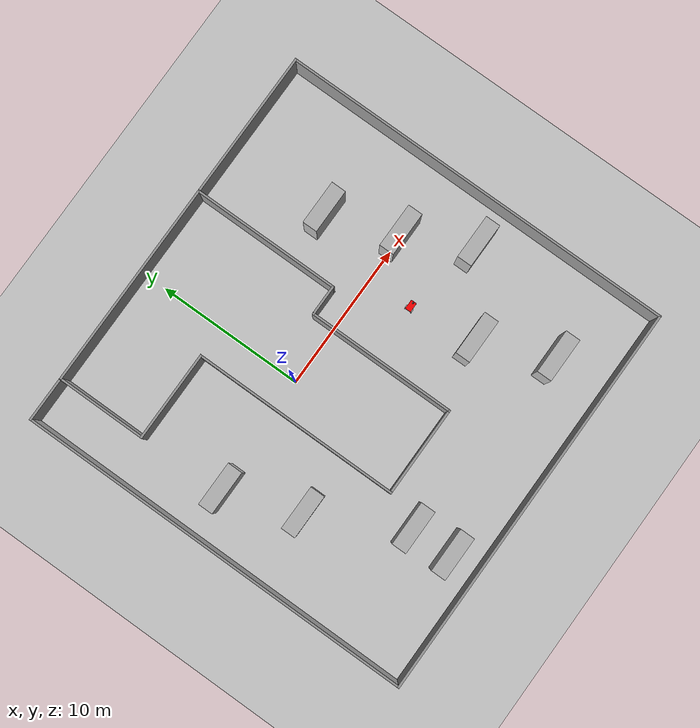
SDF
<sdf version="1.4">
 <world name="default">
  <model name="ground_plane">
   <static>1</static>
   <link name="link">
    <collision name="collision">
     <geometry><plane><normal>0 0 1</normal><size>100 100</size></plane></geometry>
     <surface><friction><ode><mu>100</mu><mu2>50</mu2></ode></friction></surface>
    </collision>
    <visual name="visual">
     <cast_shadows>0</cast_shadows>
     <geometry><plane><normal>0 0 1</normal><size>100 100</size></plane></geometry>
     <material>
      <script><uri>file://media/materials/scripts/gazebo.material</uri><name>Gazebo/Grey</name></script>
     </material>
    </visual>
    <velocity_decay><linear>0</linear><angular>0</angular></velocity_decay>
   </link>
  </model>
  <scene><ambient>0.4 0.4 0.4 1</ambient><background>0.7 0.7 0.7 1</background><shadows>0</shadows></scene>
  <light name="sun" type="directional">
   <pose>0 0 10 0 -0 0</pose>
   <diffuse>0.8 0.8 0.8 1</diffuse>
   <specular>0.2 0.2 0.2 1</specular>
   <attenuation>
    <range>1000</range>
    <constant>0.9</constant>
    <linear>0.01</linear>
    <quadratic>0.001</quadratic>
   </attenuation>
   <direction>-0.5 0.1 -0.9</direction>
  </light>
  <gravity>0 0 -9.8</gravity>
  <magnetic_field>6e-06 2.3e-05 -4.2e-05</magnetic_field>
  <atmosphere type="adiabatic"/>
  <physics name="default_physics" default="0" type="ode">
   <max_step_size>0.001</max_step_size>
   <real_time_factor>1</real_time_factor>
   <real_time_update_rate>1000</real_time_update_rate>
  </physics>
  <scene><ambient>0.4 0.4 0.4 1</ambient><background>0.7 0.7 0.7 1</background><shadows>1</shadows></scene>
  <audio><device>default</device></audio>
  <spherical_coordinates>
   <surface_model>EARTH_WGS84</surface_model>
   <latitude_deg>47.840640</latitude_deg>
   <longitude_deg>10.619944</longitude_deg>
   <elevation>740.0</elevation>
   <heading_deg>180</heading_deg>
  </spherical_coordinates>
  <include><pose>8.0 -3.0 0.0 0.0 0.0 0.0</pose><uri>model://basic_mobile_bot_description</uri></include>
  <include><uri>model://kmou</uri><pose>2.4 -2.1 0 0 0 0</pose></include>
 </world>
</sdf>

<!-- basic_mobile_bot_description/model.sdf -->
<sdf version="1.5">
  <model name="basic_mobile_bot">
  <static>false</static>

  <!-- ****************** ROBOT BASE FOOTPRINT ***************************  -->
  <pose>0.0 0.0 0.0 0.0 0.0 0.0</pose>
  <link name="base_footprint"/>

  <!-- ********************** ROBOT BASE *********************************  -->
  <link name="base_link">

    <collision name="base_collision">
      <pose>0 0 0.1 0 0 0</pose>
      <geometry>
        <box>
          <size>0.70 0.39 0.20</size>
        </box>
      </geometry>
    </collision>

    <visual name="base_visual">
      <pose>0 0 -0.05 1.5707963267949 0 3.141592654</pose>
      <geometry>
        <mesh>
          <uri>model://basic_mobile_bot_description/meshes/robot_base.stl</uri>
          <scale>1.0 1.0 1.0</scale>
        </mesh>
      </geometry>
      <material>
        <ambient>1.0 0.0 0.0 1.0</ambient>
        <diffuse>1.0 0.0 0.0 1.0</diffuse>
        <specular>0.0 0.0 0.0 1.0</specular>
        <emissive>0.0 0.0 0.0 1.0</emissive>
      </material>
    </visual>
  </link>

  <!-- *********************** IMU SENSOR SETUP **************************  -->
  <link name="imu_link">
    <gravity>true</gravity>
    <sensor name="bmb_imu" type="imu">
      <always_on>true</always_on>
      <update_rate>100</update_rate>
      <visualize>true</visualize>
      <imu>
        <orientation>
          <x>
            <noise type="gaussian">
              <mean>0.0</mean>
              <stddev>2e-3</stddev>
            </noise>
          </x>
          <y>
            <noise type="gaussian">
              <mean>0.0</mean>
              <stddev>2e-3</stddev>
            </noise>
          </y>
          <z>
            <noise type="gaussian">
              <mean>0.0</mean>
              <stddev>2e-3</stddev>
            </noise>
          </z>
        </orientation>
        <angular_velocity>
          <x>
            <noise type="gaussian">
              <mean>0.0</mean>
              <stddev>2e-4</stddev>
            </noise>
          </x>
          <y>
            <noise type="gaussian">
              <mean>0.0</mean>
              <stddev>2e-4</stddev>
            </noise>
          </y>
          <z>
            <noise type="gaussian">
              <mean>0.0</mean>
              <stddev>2e-4</stddev>
            </noise>
          </z>
        </angular_velocity>
        <linear_acceleration>
          <x>
            <noise type="gaussian">
              <mean>0.0</mean>
              <stddev>1.7e-2</stddev>
            </noise>
          </x>
          <y>
            <noise type="gaussian">
              <mean>0.0</mean>
              <stddev>1.7e-2</stddev>
            </noise>
          </y>
          <z>
            <noise type="gaussian">
              <mean>0.0</mean>
              <stddev>1.7e-2</stddev>
            </noise>
          </z>
        </linear_acceleration>
      </imu>
      <plugin name="basic_mobile_bot_imu" filename="libgazebo_ros_imu_sensor.so">
        <initial_orientation_as_reference>false</initial_orientation_as_reference>
        <frame_name>imu_link</frame_name>
        <ros>
          <namespace>/imu</namespace>
          <remapping>~/out:=data</remapping>
        </ros>
      </plugin>
    </sensor>
  </link>

  <!-- *********************** GPS SETUP *********************************  -->
  <link name="gps_link">
    <sensor name="bmb_gps" type="gps">
      <always_on>true</always_on>
      <update_rate>10.0</update_rate>
      <gps>
        <position_sensing>
          <horizontal>
            <noise type="gaussian">
              <mean>0.0</mean>
              <stddev>1e-2</stddev>
            </noise>
          </horizontal>
          <vertical>
            <noise type="gaussian">
              <mean>0.0</mean>
              <stddev>1</stddev>
            </noise>
          </vertical>
        </position_sensing>
      </gps>
      <plugin name="basic_mobile_bot_gps" filename="libgazebo_ros_gps_sensor.so">
        <ros>
          <remapping>~/out:=gps/fix</remapping>
        </ros>
      </plugin>
    </sensor>
  </link>

  <!-- ****************************** LIDAR *****************************    -->
  <link name="lidar_link">
    <inertial>
      <pose>0.215 0 0.13 0 0 0</pose>
      <inertia>
        <ixx>0.001</ixx>
        <ixy>0.000</ixy>
        <ixz>0.000</ixz>
        <iyy>0.001</iyy>
        <iyz>0.000</iyz>
        <izz>0.001</izz>
      </inertia>
      <mass>0.114</mass>
    </inertial>

    <collision name="lidar_collision">
      <pose>0.215 0 0.13 0 0 0</pose>
      <geometry>
        <cylinder>
          <radius>0.0508</radius>
          <length>0.18</length>
        </cylinder>
      </geometry>
    </collision>

    <visual name="lidar_visual">
      <pose>0.215 0 0.13 0 0 0</pose>
      <geometry>
        <cylinder>
          <radius>0.0508</radius>
          <length>0.18</length>
        </cylinder>
      </geometry>
      <material>
        <ambient>0.0 0.0 0.0 1.0</ambient>
        <diffuse>0.0 0.0 0.0 1.0</diffuse>
        <specular>0.0 0.0 0.0 1.0</specular>
        <emissive>0.0 0.0 0.0 1.0</emissive>
      </material>
    </visual>

    <sensor name="lidar" type="ray">
      <pose>0.215 0 0.215 0 0 0</pose>
      <always_on>true</always_on>
      <visualize>true</visualize>
      <update_rate>5</update_rate>
      <ray>
        <scan>
          <horizontal>
            <samples>360</samples>
            <resolution>1.00000</resolution>
            <min_angle>0.000000</min_angle>
            <max_angle>6.280000</max_angle>
          </horizontal>
        </scan>
        <range>
          <min>0.120000</min>
          <max>3.5</max>
          <resolution>0.015000</resolution>
        </range>
        <noise>
          <type>gaussian</type>
          <mean>0.0</mean>
          <stddev>0.01</stddev>
        </noise>
      </ray>
      <plugin name="scan" filename="libgazebo_ros_ray_sensor.so">
        <ros>
          <remapping>~/out:=scan</remapping>
        </ros>
        <output_type>sensor_msgs/LaserScan</output_type>
        <frame_name>lidar_link</frame_name>
      </plugin>
    </sensor>
  </link>

  <!-- *********************** DRIVE WHEELS ******************************  -->
  <link name="drivewhl_l_link">
    <pose>-0.221 0.23 -0.05 0 1.570796 1.570796</pose>

    <collision name="drivewhl_l_collision">
      <geometry>
        <cylinder>
          <radius>0.14</radius>
          <length>0.06</length>
        </cylinder>
      </geometry>
    </collision>

    <visual name="drivewhl_l_visual">
      <geometry>
        <cylinder>
          <radius>0.14</radius>
          <length>0.06</length>
        </cylinder>
      </geometry>
    </visual>
  </link>

  <link name="drivewhl_r_link">
    <pose>-0.221 -0.23 -0.05 0 1.570796 1.570796</pose>

    <collision name="drivewhl_r_collision">
      <geometry>
        <cylinder>
          <radius>0.14</radius>
          <length>0.06</length>
        </cylinder>
      </geometry>
    </collision>

    <visual name="drivewhl_r_visual">
      <geometry>
        <cylinder>
          <radius>0.14</radius>
          <length>0.06</length>
        </cylinder>
      </geometry>
    </visual>
  </link>

  <!-- *********************** CASTER WHEEL ******************************  -->
  <link name='front_caster'>
    <pose>0.217 0 -0.1 0 0 0</pose>
    <inertial>
      <inertia>
        <ixx>0.001</ixx>
        <ixy>0.000</ixy>
        <ixz>0.000</ixz>
        <iyy>0.001</iyy>
        <iyz>0.000</iyz>
        <izz>0.001</izz>
      </inertia>
      <mass>70.0</mass>
    </inertial>
    <collision name='collision'>
      <geometry>
        <sphere>
          <radius>0.09</radius>
        </sphere>
      </geometry>
      <surface>
        <friction>
          <ode>
            <mu>0.01</mu>
            <mu2>0.01</mu2>
            <slip1>1.0</slip1>
            <slip2>1.0</slip2>
          </ode>
        </friction>
      </surface>
    </collision>
    <visual name="front_caster_visual">
      <geometry>
        <sphere>
          <radius>0.09</radius>
        </sphere>
      </geometry>
    </visual>
  </link>

  <!-- ************************ JOINTS ***********************************  -->
  <!-- Pose of the joint is the same as the child link frame -->
  <!-- Axis is the axis of rotation relative to the child link frame -->

  <joint name="base_joint" type="fixed">
    <parent>base_footprint</parent>
    <child>base_link</child>
    <pose>0 0 0 0 0 0</pose>
  </joint>

  <joint name="drivewhl_l_joint" type="revolute">
    <parent>base_link</parent>
    <child>drivewhl_l_link</child>
    <pose>0 0 0 0 0 0</pose>
    <axis>
      <xyz>0 0 1</xyz>
    </axis>
  </joint>

  <joint name="drivewhl_r_joint" type="revolute">
    <parent>base_link</parent>
    <child>drivewhl_r_link</child>
    <pose>0 0 0 0 0 0</pose>
    <axis>
      <xyz>0 0 1</xyz>
    </axis>
  </joint>

  <joint name='caster_joint' type='fixed'>
    <parent>base_link</parent>
    <child>front_caster</child>
    <pose>0 0 0 0 0 0</pose>
  </joint>

  <joint name="imu_joint" type="fixed">
    <parent>base_link</parent>
    <child>imu_link</child>
    <pose>0 0 0 0 0 0</pose>
  </joint>

  <joint name="gps_joint" type="fixed">
    <parent>base_link</parent>
    <child>gps_link</child>
    <pose>0 0 0 0 0 0</pose>
  </joint>

  <joint name="lidar_joint" type="fixed">
    <parent>base_link</parent>
    <child>lidar_link</child>
    <pose>0 0 0 0 0 0</pose>
  </joint>

 <!-- *********************** WHEEL ODOMETRY ***************************    -->
  <plugin name="basic_mobile_bot_diff_drive" filename="libgazebo_ros_diff_drive.so">

    <update_rate>30</update_rate>

    <!-- wheels -->
    <left_joint>drivewhl_l_joint</left_joint>
    <right_joint>drivewhl_r_joint</right_joint>

    <!-- kinematics -->
    <wheel_separation>0.52</wheel_separation>
    <wheel_diameter>0.28</wheel_diameter>

    <!-- limits -->
    <max_wheel_torque>20</max_wheel_torque>
    <max_wheel_acceleration>1.0</max_wheel_acceleration>

    <!-- Receive velocity commands on this ROS topic -->
    <command_topic>cmd_vel</command_topic>

    <!-- output -->
    <!-- When false, publish no wheel odometry data to a ROS topic -->
    <publish_odom>true</publish_odom>

    <!-- When true, publish coordinate transform from odom to base_footprint -->
    <!-- I usually use the robot_localization package to publish this transform -->
    <publish_odom_tf>false</publish_odom_tf>

    <!-- When true, publish coordinate transform from base_link to the wheels -->
    <!-- The robot_state_publisher package is often used to publish this transform -->
    <publish_wheel_tf>false</publish_wheel_tf>

    <odometry_topic>odom</odometry_topic>
    <odometry_frame>odom</odometry_frame>
    <robot_base_frame>base_footprint</robot_base_frame>

    <!-- Odometry source, 0 for ENCODER, 1 for WORLD, defaults to WORLD -->
    <odometry_source>0</odometry_source>

    <!-- Change the ROS topic we will publish the odometry data to -->
    <ros>
      <remapping>odom:=wheel/odometry</remapping>
    </ros>

  </plugin>

 <!-- *********************** JOINT STATE PUBLISHER *********************   -->

  <plugin name="basic_mobile_bot_joint_state" filename="libgazebo_ros_joint_state_publisher.so">
    <ros>
      <remapping>~/out:=joint_states</remapping>
    </ros>
    <update_rate>30</update_rate>
    <joint_name>drivewhl_l_joint</joint_name>
    <joint_name>drivewhl_r_joint</joint_name>
  </plugin>

  </model>
</sdf>

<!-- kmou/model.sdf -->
<sdf version='1.7'>
  <model name='kmou_'>
    <link name='Wall_38'>
      <pose>0 13.5 0 0 -0 0</pose>
      <self_collide>0</self_collide>
      <enable_wind>0</enable_wind>
      <kinematic>0</kinematic>
      <visual name='Wall_38_Visual'>
        <pose>0 0 1.25 0 -0 0</pose>
        <geometry>
          <box>
            <size>27.15 0.15 2.5</size>
          </box>
        </geometry>
        <material>
          <script>
            <uri>file://media/materials/scripts/gazebo.material</uri>
            <name>Gazebo/Grey</name>
          </script>
          <ambient>1 1 1 1</ambient>
          <shader type='pixel'/>
        </material>
        <meta>
          <layer>0</layer>
        </meta>
        <transparency>0</transparency>
        <cast_shadows>1</cast_shadows>
      </visual>
      <collision name='Wall_38_Collision'>
        <laser_retro>0</laser_retro>
        <max_contacts>10</max_contacts>
        <pose>0 0 1.25 0 -0 0</pose>
        <geometry>
          <box>
            <size>27.15 0.15 2.5</size>
          </box>
        </geometry>
        <surface>
          <friction>
            <ode>
              <mu>1</mu>
              <mu2>1</mu2>
              <fdir1>0 0 0</fdir1>
              <slip1>0</slip1>
              <slip2>0</slip2>
            </ode>
            <torsional>
              <coefficient>1</coefficient>
              <patch_radius>0</patch_radius>
              <surface_radius>0</surface_radius>
              <use_patch_radius>1</use_patch_radius>
              <ode>
                <slip>0</slip>
              </ode>
            </torsional>
          </friction>
          <bounce>
            <restitution_coefficient>0</restitution_coefficient>
            <threshold>1e+06</threshold>
          </bounce>
          <contact>
            <collide_without_contact>0</collide_without_contact>
            <collide_without_contact_bitmask>1</collide_without_contact_bitmask>
            <collide_bitmask>1</collide_bitmask>
            <ode>
              <soft_cfm>0</soft_cfm>
              <soft_erp>0.2</soft_erp>
              <kp>1e+13</kp>
              <kd>1</kd>
              <max_vel>0.01</max_vel>
              <min_depth>0</min_depth>
            </ode>
            <bullet>
              <split_impulse>1</split_impulse>
              <split_impulse_penetration_threshold>-0.01</split_impulse_penetration_threshold>
              <soft_cfm>0</soft_cfm>
              <soft_erp>0.2</soft_erp>
              <kp>1e+13</kp>
              <kd>1</kd>
            </bullet>
          </contact>
        </surface>
      </collision>
    </link>
    <link name='Wall_40'>
      <pose>-10.5 10.5 0 0 0 -1.5708</pose>
      <self_collide>0</self_collide>
      <enable_wind>0</enable_wind>
      <kinematic>0</kinematic>
      <visual name='Wall_40_Visual'>
        <pose>0 0 1.25 0 -0 0</pose>
        <geometry>
          <box>
            <size>6.15 0.15 2.5</size>
          </box>
        </geometry>
        <material>
          <script>
            <uri>file://media/materials/scripts/gazebo.material</uri>
            <name>Gazebo/Grey</name>
          </script>
          <ambient>1 1 1 1</ambient>
          <shader type='pixel'/>
        </material>
        <meta>
          <layer>0</layer>
        </meta>
        <transparency>0</transparency>
        <cast_shadows>1</cast_shadows>
      </visual>
      <collision name='Wall_40_Collision'>
        <laser_retro>0</laser_retro>
        <max_contacts>10</max_contacts>
        <pose>0 0 1.25 0 -0 0</pose>
        <geometry>
          <box>
            <size>6.15 0.15 2.5</size>
          </box>
        </geometry>
        <surface>
          <friction>
            <ode>
              <mu>1</mu>
              <mu2>1</mu2>
              <fdir1>0 0 0</fdir1>
              <slip1>0</slip1>
              <slip2>0</slip2>
            </ode>
            <torsional>
              <coefficient>1</coefficient>
              <patch_radius>0</patch_radius>
              <surface_radius>0</surface_radius>
              <use_patch_radius>1</use_patch_radius>
              <ode>
                <slip>0</slip>
              </ode>
            </torsional>
          </friction>
          <bounce>
            <restitution_coefficient>0</restitution_coefficient>
            <threshold>1e+06</threshold>
          </bounce>
          <contact>
            <collide_without_contact>0</collide_without_contact>
            <collide_without_contact_bitmask>1</collide_without_contact_bitmask>
            <collide_bitmask>1</collide_bitmask>
            <ode>
              <soft_cfm>0</soft_cfm>
              <soft_erp>0.2</soft_erp>
              <kp>1e+13</kp>
              <kd>1</kd>
              <max_vel>0.01</max_vel>
              <min_depth>0</min_depth>
            </ode>
            <bullet>
              <split_impulse>1</split_impulse>
              <split_impulse_penetration_threshold>-0.01</split_impulse_penetration_threshold>
              <soft_cfm>0</soft_cfm>
              <soft_erp>0.2</soft_erp>
              <kp>1e+13</kp>
              <kd>1</kd>
            </bullet>
          </contact>
        </surface>
      </collision>
    </link>
    <link name='Wall_42'>
      <pose>-4.5 0.5 0 0 0 -1.5708</pose>
      <self_collide>0</self_collide>
      <enable_wind>0</enable_wind>
      <kinematic>0</kinematic>
      <visual name='Wall_42_Visual'>
        <pose>0 0 1.25 0 -0 0</pose>
        <geometry>
          <box>
            <size>14.15 0.15 2.5</size>
          </box>
        </geometry>
        <material>
          <script>
            <uri>file://media/materials/scripts/gazebo.material</uri>
            <name>Gazebo/Grey</name>
          </script>
          <ambient>1 1 1 1</ambient>
          <shader type='pixel'/>
        </material>
        <meta>
          <layer>0</layer>
        </meta>
        <transparency>0</transparency>
        <cast_shadows>1</cast_shadows>
      </visual>
      <collision name='Wall_42_Collision'>
        <laser_retro>0</laser_retro>
        <max_contacts>10</max_contacts>
        <pose>0 0 1.25 0 -0 0</pose>
        <geometry>
          <box>
            <size>14.15 0.15 2.5</size>
          </box>
        </geometry>
        <surface>
          <friction>
            <ode>
              <mu>1</mu>
              <mu2>1</mu2>
              <fdir1>0 0 0</fdir1>
              <slip1>0</slip1>
              <slip2>0</slip2>
            </ode>
            <torsional>
              <coefficient>1</coefficient>
              <patch_radius>0</patch_radius>
              <surface_radius>0</surface_radius>
              <use_patch_radius>1</use_patch_radius>
              <ode>
                <slip>0</slip>
              </ode>
            </torsional>
          </friction>
          <bounce>
            <restitution_coefficient>0</restitution_coefficient>
            <threshold>1e+06</threshold>
          </bounce>
          <contact>
            <collide_without_contact>0</collide_without_contact>
            <collide_without_contact_bitmask>1</collide_without_contact_bitmask>
            <collide_bitmask>1</collide_bitmask>
            <ode>
              <soft_cfm>0</soft_cfm>
              <soft_erp>0.2</soft_erp>
              <kp>1e+13</kp>
              <kd>1</kd>
              <max_vel>0.01</max_vel>
              <min_depth>0</min_depth>
            </ode>
            <bullet>
              <split_impulse>1</split_impulse>
              <split_impulse_penetration_threshold>-0.01</split_impulse_penetration_threshold>
              <soft_cfm>0</soft_cfm>
              <soft_erp>0.2</soft_erp>
              <kp>1e+13</kp>
              <kd>1</kd>
            </bullet>
          </contact>
        </surface>
      </collision>
    </link>
    <link name='Wall_44'>
      <pose>-7.5 7.5 0 0 -0 0</pose>
      <self_collide>0</self_collide>
      <enable_wind>0</enable_wind>
      <kinematic>0</kinematic>
      <visual name='Wall_44_Visual'>
        <pose>0 0 1.25 0 -0 0</pose>
        <geometry>
          <box>
            <size>6.15 0.15 2.5</size>
          </box>
        </geometry>
        <material>
          <script>
            <uri>file://media/materials/scripts/gazebo.material</uri>
            <name>Gazebo/Grey</name>
          </script>
          <ambient>1 1 1 1</ambient>
          <shader type='pixel'/>
        </material>
        <meta>
          <layer>0</layer>
        </meta>
        <transparency>0</transparency>
        <cast_shadows>1</cast_shadows>
      </visual>
      <collision name='Wall_44_Collision'>
        <laser_retro>0</laser_retro>
        <max_contacts>10</max_contacts>
        <pose>0 0 1.25 0 -0 0</pose>
        <geometry>
          <box>
            <size>6.15 0.15 2.5</size>
          </box>
        </geometry>
        <surface>
          <friction>
            <ode>
              <mu>1</mu>
              <mu2>1</mu2>
              <fdir1>0 0 0</fdir1>
              <slip1>0</slip1>
              <slip2>0</slip2>
            </ode>
            <torsional>
              <coefficient>1</coefficient>
              <patch_radius>0</patch_radius>
              <surface_radius>0</surface_radius>
              <use_patch_radius>1</use_patch_radius>
              <ode>
                <slip>0</slip>
              </ode>
            </torsional>
          </friction>
          <bounce>
            <restitution_coefficient>0</restitution_coefficient>
            <threshold>1e+06</threshold>
          </bounce>
          <contact>
            <collide_without_contact>0</collide_without_contact>
            <collide_without_contact_bitmask>1</collide_without_contact_bitmask>
            <collide_bitmask>1</collide_bitmask>
            <ode>
              <soft_cfm>0</soft_cfm>
              <soft_erp>0.2</soft_erp>
              <kp>1e+13</kp>
              <kd>1</kd>
              <max_vel>0.01</max_vel>
              <min_depth>0</min_depth>
            </ode>
            <bullet>
              <split_impulse>1</split_impulse>
              <split_impulse_penetration_threshold>-0.01</split_impulse_penetration_threshold>
              <soft_cfm>0</soft_cfm>
              <soft_erp>0.2</soft_erp>
              <kp>1e+13</kp>
              <kd>1</kd>
            </bullet>
          </contact>
        </surface>
      </collision>
    </link>
    <link name='Wall_46'>
      <pose>-1.5 -6.5 0 0 -0 0</pose>
      <self_collide>0</self_collide>
      <enable_wind>0</enable_wind>
      <kinematic>0</kinematic>
      <visual name='Wall_46_Visual'>
        <pose>0 0 1.25 0 -0 0</pose>
        <geometry>
          <box>
            <size>6.15 0.15 2.5</size>
          </box>
        </geometry>
        <material>
          <script>
            <uri>file://media/materials/scripts/gazebo.material</uri>
            <name>Gazebo/Grey</name>
          </script>
          <ambient>1 1 1 1</ambient>
          <shader type='pixel'/>
        </material>
        <meta>
          <layer>0</layer>
        </meta>
        <transparency>0</transparency>
        <cast_shadows>1</cast_shadows>
      </visual>
      <collision name='Wall_46_Collision'>
        <laser_retro>0</laser_retro>
        <max_contacts>10</max_contacts>
        <pose>0 0 1.25 0 -0 0</pose>
        <geometry>
          <box>
            <size>6.15 0.15 2.5</size>
          </box>
        </geometry>
        <surface>
          <friction>
            <ode>
              <mu>1</mu>
              <mu2>1</mu2>
              <fdir1>0 0 0</fdir1>
              <slip1>0</slip1>
              <slip2>0</slip2>
            </ode>
            <torsional>
              <coefficient>1</coefficient>
              <patch_radius>0</patch_radius>
              <surface_radius>0</surface_radius>
              <use_patch_radius>1</use_patch_radius>
              <ode>
                <slip>0</slip>
              </ode>
            </torsional>
          </friction>
          <bounce>
            <restitution_coefficient>0</restitution_coefficient>
            <threshold>1e+06</threshold>
          </bounce>
          <contact>
            <collide_without_contact>0</collide_without_contact>
            <collide_without_contact_bitmask>1</collide_without_contact_bitmask>
            <collide_bitmask>1</collide_bitmask>
            <ode>
              <soft_cfm>0</soft_cfm>
              <soft_erp>0.2</soft_erp>
              <kp>1e+13</kp>
              <kd>1</kd>
              <max_vel>0.01</max_vel>
              <min_depth>0</min_depth>
            </ode>
            <bullet>
              <split_impulse>1</split_impulse>
              <split_impulse_penetration_threshold>-0.01</split_impulse_penetration_threshold>
              <soft_cfm>0</soft_cfm>
              <soft_erp>0.2</soft_erp>
              <kp>1e+13</kp>
              <kd>1</kd>
            </bullet>
          </contact>
        </surface>
      </collision>
    </link>
    <link name='Wall_48'>
      <pose>1.5 -1.5 0 0 -0 1.5708</pose>
      <self_collide>0</self_collide>
      <enable_wind>0</enable_wind>
      <kinematic>0</kinematic>
      <visual name='Wall_48_Visual'>
        <pose>0 0 1.25 0 -0 0</pose>
        <geometry>
          <box>
            <size>10.15 0.15 2.5</size>
          </box>
        </geometry>
        <material>
          <script>
            <uri>file://media/materials/scripts/gazebo.material</uri>
            <name>Gazebo/Grey</name>
          </script>
          <ambient>1 1 1 1</ambient>
          <shader type='pixel'/>
        </material>
        <meta>
          <layer>0</layer>
        </meta>
        <transparency>0</transparency>
        <cast_shadows>1</cast_shadows>
      </visual>
      <collision name='Wall_48_Collision'>
        <laser_retro>0</laser_retro>
        <max_contacts>10</max_contacts>
        <pose>0 0 1.25 0 -0 0</pose>
        <geometry>
          <box>
            <size>10.15 0.15 2.5</size>
          </box>
        </geometry>
        <surface>
          <friction>
            <ode>
              <mu>1</mu>
              <mu2>1</mu2>
              <fdir1>0 0 0</fdir1>
              <slip1>0</slip1>
              <slip2>0</slip2>
            </ode>
            <torsional>
              <coefficient>1</coefficient>
              <patch_radius>0</patch_radius>
              <surface_radius>0</surface_radius>
              <use_patch_radius>1</use_patch_radius>
              <ode>
                <slip>0</slip>
              </ode>
            </torsional>
          </friction>
          <bounce>
            <restitution_coefficient>0</restitution_coefficient>
            <threshold>1e+06</threshold>
          </bounce>
          <contact>
            <collide_without_contact>0</collide_without_contact>
            <collide_without_contact_bitmask>1</collide_without_contact_bitmask>
            <collide_bitmask>1</collide_bitmask>
            <ode>
              <soft_cfm>0</soft_cfm>
              <soft_erp>0.2</soft_erp>
              <kp>1e+13</kp>
              <kd>1</kd>
              <max_vel>0.01</max_vel>
              <min_depth>0</min_depth>
            </ode>
            <bullet>
              <split_impulse>1</split_impulse>
              <split_impulse_penetration_threshold>-0.01</split_impulse_penetration_threshold>
              <soft_cfm>0</soft_cfm>
              <soft_erp>0.2</soft_erp>
              <kp>1e+13</kp>
              <kd>1</kd>
            </bullet>
          </contact>
        </surface>
      </collision>
    </link>
    <link name='Wall_54'>
      <pose>2.5 3.5 0 0 -0 0</pose>
      <self_collide>0</self_collide>
      <enable_wind>0</enable_wind>
      <kinematic>0</kinematic>
      <visual name='Wall_54_Visual'>
        <pose>0 0 1.25 0 -0 0</pose>
        <geometry>
          <box>
            <size>2.15 0.15 2.5</size>
          </box>
        </geometry>
        <material>
          <script>
            <uri>file://media/materials/scripts/gazebo.material</uri>
            <name>Gazebo/Grey</name>
          </script>
          <ambient>1 1 1 1</ambient>
          <shader type='pixel'/>
        </material>
        <meta>
          <layer>0</layer>
        </meta>
        <transparency>0</transparency>
        <cast_shadows>1</cast_shadows>
      </visual>
      <collision name='Wall_54_Collision'>
        <laser_retro>0</laser_retro>
        <max_contacts>10</max_contacts>
        <pose>0 0 1.25 0 -0 0</pose>
        <geometry>
          <box>
            <size>2.15 0.15 2.5</size>
          </box>
        </geometry>
        <surface>
          <friction>
            <ode>
              <mu>1</mu>
              <mu2>1</mu2>
              <fdir1>0 0 0</fdir1>
              <slip1>0</slip1>
              <slip2>0</slip2>
            </ode>
            <torsional>
              <coefficient>1</coefficient>
              <patch_radius>0</patch_radius>
              <surface_radius>0</surface_radius>
              <use_patch_radius>1</use_patch_radius>
              <ode>
                <slip>0</slip>
              </ode>
            </torsional>
          </friction>
          <bounce>
            <restitution_coefficient>0</restitution_coefficient>
            <threshold>1e+06</threshold>
          </bounce>
          <contact>
            <collide_without_contact>0</collide_without_contact>
            <collide_without_contact_bitmask>1</collide_without_contact_bitmask>
            <collide_bitmask>1</collide_bitmask>
            <ode>
              <soft_cfm>0</soft_cfm>
              <soft_erp>0.2</soft_erp>
              <kp>1e+13</kp>
              <kd>1</kd>
              <max_vel>0.01</max_vel>
              <min_depth>0</min_depth>
            </ode>
            <bullet>
              <split_impulse>1</split_impulse>
              <split_impulse_penetration_threshold>-0.01</split_impulse_penetration_threshold>
              <soft_cfm>0</soft_cfm>
              <soft_erp>0.2</soft_erp>
              <kp>1e+13</kp>
              <kd>1</kd>
            </bullet>
          </contact>
        </surface>
      </collision>
    </link>
    <link name='Wall_56'>
      <pose>3.5 8.5 0 0 -0 1.5708</pose>
      <self_collide>0</self_collide>
      <enable_wind>0</enable_wind>
      <kinematic>0</kinematic>
      <visual name='Wall_56_Visual'>
        <pose>0 0 1.25 0 -0 0</pose>
        <geometry>
          <box>
            <size>10.15 0.15 2.5</size>
          </box>
        </geometry>
        <material>
          <script>
            <uri>file://media/materials/scripts/gazebo.material</uri>
            <name>Gazebo/Grey</name>
          </script>
          <ambient>1 1 1 1</ambient>
          <shader type='pixel'/>
        </material>
        <meta>
          <layer>0</layer>
        </meta>
        <transparency>0</transparency>
        <cast_shadows>1</cast_shadows>
      </visual>
      <collision name='Wall_56_Collision'>
        <laser_retro>0</laser_retro>
        <max_contacts>10</max_contacts>
        <pose>0 0 1.25 0 -0 0</pose>
        <geometry>
          <box>
            <size>10.15 0.15 2.5</size>
          </box>
        </geometry>
        <surface>
          <friction>
            <ode>
              <mu>1</mu>
              <mu2>1</mu2>
              <fdir1>0 0 0</fdir1>
              <slip1>0</slip1>
              <slip2>0</slip2>
            </ode>
            <torsional>
              <coefficient>1</coefficient>
              <patch_radius>0</patch_radius>
              <surface_radius>0</surface_radius>
              <use_patch_radius>1</use_patch_radius>
              <ode>
                <slip>0</slip>
              </ode>
            </torsional>
          </friction>
          <bounce>
            <restitution_coefficient>0</restitution_coefficient>
            <threshold>1e+06</threshold>
          </bounce>
          <contact>
            <collide_without_contact>0</collide_without_contact>
            <collide_without_contact_bitmask>1</collide_without_contact_bitmask>
            <collide_bitmask>1</collide_bitmask>
            <ode>
              <soft_cfm>0</soft_cfm>
              <soft_erp>0.2</soft_erp>
              <kp>1e+13</kp>
              <kd>1</kd>
              <max_vel>0.01</max_vel>
              <min_depth>0</min_depth>
            </ode>
            <bullet>
              <split_impulse>1</split_impulse>
              <split_impulse_penetration_threshold>-0.01</split_impulse_penetration_threshold>
              <soft_cfm>0</soft_cfm>
              <soft_erp>0.2</soft_erp>
              <kp>1e+13</kp>
              <kd>1</kd>
            </bullet>
          </contact>
        </surface>
      </collision>
    </link>
    <link name='Wall_58'>
      <pose>-13.5 0 0 0 0 -1.5708</pose>
      <self_collide>0</self_collide>
      <enable_wind>0</enable_wind>
      <kinematic>0</kinematic>
      <visual name='Wall_58_Visual'>
        <pose>0 0 1.25 0 -0 0</pose>
        <geometry>
          <box>
            <size>27.15 0.15 2.5</size>
          </box>
        </geometry>
        <material>
          <script>
            <uri>file://media/materials/scripts/gazebo.material</uri>
            <name>Gazebo/Grey</name>
          </script>
          <ambient>1 1 1 1</ambient>
          <shader type='pixel'/>
        </material>
        <meta>
          <layer>0</layer>
        </meta>
        <transparency>0</transparency>
        <cast_shadows>1</cast_shadows>
      </visual>
      <collision name='Wall_58_Collision'>
        <laser_retro>0</laser_retro>
        <max_contacts>10</max_contacts>
        <pose>0 0 1.25 0 -0 0</pose>
        <geometry>
          <box>
            <size>27.15 0.15 2.5</size>
          </box>
        </geometry>
        <surface>
          <friction>
            <ode>
              <mu>1</mu>
              <mu2>1</mu2>
              <fdir1>0 0 0</fdir1>
              <slip1>0</slip1>
              <slip2>0</slip2>
            </ode>
            <torsional>
              <coefficient>1</coefficient>
              <patch_radius>0</patch_radius>
              <surface_radius>0</surface_radius>
              <use_patch_radius>1</use_patch_radius>
              <ode>
                <slip>0</slip>
              </ode>
            </torsional>
          </friction>
          <bounce>
            <restitution_coefficient>0</restitution_coefficient>
            <threshold>1e+06</threshold>
          </bounce>
          <contact>
            <collide_without_contact>0</collide_without_contact>
            <collide_without_contact_bitmask>1</collide_without_contact_bitmask>
            <collide_bitmask>1</collide_bitmask>
            <ode>
              <soft_cfm>0</soft_cfm>
              <soft_erp>0.2</soft_erp>
              <kp>1e+13</kp>
              <kd>1</kd>
              <max_vel>0.01</max_vel>
              <min_depth>0</min_depth>
            </ode>
            <bullet>
              <split_impulse>1</split_impulse>
              <split_impulse_penetration_threshold>-0.01</split_impulse_penetration_threshold>
              <soft_cfm>0</soft_cfm>
              <soft_erp>0.2</soft_erp>
              <kp>1e+13</kp>
              <kd>1</kd>
            </bullet>
          </contact>
        </surface>
      </collision>
    </link>
    <link name='Wall_60'>
      <pose>0 -13.5 0 0 -0 0</pose>
      <self_collide>0</self_collide>
      <enable_wind>0</enable_wind>
      <kinematic>0</kinematic>
      <visual name='Wall_60_Visual'>
        <pose>0 0 1.25 0 -0 0</pose>
        <geometry>
          <box>
            <size>27.15 0.15 2.5</size>
          </box>
        </geometry>
        <material>
          <script>
            <uri>file://media/materials/scripts/gazebo.material</uri>
            <name>Gazebo/Grey</name>
          </script>
          <ambient>1 1 1 1</ambient>
          <shader type='pixel'/>
        </material>
        <meta>
          <layer>0</layer>
        </meta>
        <transparency>0</transparency>
        <cast_shadows>1</cast_shadows>
      </visual>
      <collision name='Wall_60_Collision'>
        <laser_retro>0</laser_retro>
        <max_contacts>10</max_contacts>
        <pose>0 0 1.25 0 -0 0</pose>
        <geometry>
          <box>
            <size>27.15 0.15 2.5</size>
          </box>
        </geometry>
        <surface>
          <friction>
            <ode>
              <mu>1</mu>
              <mu2>1</mu2>
              <fdir1>0 0 0</fdir1>
              <slip1>0</slip1>
              <slip2>0</slip2>
            </ode>
            <torsional>
              <coefficient>1</coefficient>
              <patch_radius>0</patch_radius>
              <surface_radius>0</surface_radius>
              <use_patch_radius>1</use_patch_radius>
              <ode>
                <slip>0</slip>
              </ode>
            </torsional>
          </friction>
          <bounce>
            <restitution_coefficient>0</restitution_coefficient>
            <threshold>1e+06</threshold>
          </bounce>
          <contact>
            <collide_without_contact>0</collide_without_contact>
            <collide_without_contact_bitmask>1</collide_without_contact_bitmask>
            <collide_bitmask>1</collide_bitmask>
            <ode>
              <soft_cfm>0</soft_cfm>
              <soft_erp>0.2</soft_erp>
              <kp>1e+13</kp>
              <kd>1</kd>
              <max_vel>0.01</max_vel>
              <min_depth>0</min_depth>
            </ode>
            <bullet>
              <split_impulse>1</split_impulse>
              <split_impulse_penetration_threshold>-0.01</split_impulse_penetration_threshold>
              <soft_cfm>0</soft_cfm>
              <soft_erp>0.2</soft_erp>
              <kp>1e+13</kp>
              <kd>1</kd>
            </bullet>
          </contact>
        </surface>
      </collision>
    </link>
    <link name='Wall_62'>
      <pose>13.5 0 0 0 -0 1.5708</pose>
      <self_collide>0</self_collide>
      <enable_wind>0</enable_wind>
      <kinematic>0</kinematic>
      <visual name='Wall_62_Visual'>
        <pose>0 0 1.25 0 -0 0</pose>
        <geometry>
          <box>
            <size>27.15 0.15 2.5</size>
          </box>
        </geometry>
        <material>
          <script>
            <uri>file://media/materials/scripts/gazebo.material</uri>
            <name>Gazebo/Grey</name>
          </script>
          <ambient>1 1 1 1</ambient>
          <shader type='pixel'/>
        </material>
        <meta>
          <layer>0</layer>
        </meta>
        <transparency>0</transparency>
        <cast_shadows>1</cast_shadows>
      </visual>
      <collision name='Wall_62_Collision'>
        <laser_retro>0</laser_retro>
        <max_contacts>10</max_contacts>
        <pose>0 0 1.25 0 -0 0</pose>
        <geometry>
          <box>
            <size>27.15 0.15 2.5</size>
          </box>
        </geometry>
        <surface>
          <friction>
            <ode>
              <mu>1</mu>
              <mu2>1</mu2>
              <fdir1>0 0 0</fdir1>
              <slip1>0</slip1>
              <slip2>0</slip2>
            </ode>
            <torsional>
              <coefficient>1</coefficient>
              <patch_radius>0</patch_radius>
              <surface_radius>0</surface_radius>
              <use_patch_radius>1</use_patch_radius>
              <ode>
                <slip>0</slip>
              </ode>
            </torsional>
          </friction>
          <bounce>
            <restitution_coefficient>0</restitution_coefficient>
            <threshold>1e+06</threshold>
          </bounce>
          <contact>
            <collide_without_contact>0</collide_without_contact>
            <collide_without_contact_bitmask>1</collide_without_contact_bitmask>
            <collide_bitmask>1</collide_bitmask>
            <ode>
              <soft_cfm>0</soft_cfm>
              <soft_erp>0.2</soft_erp>
              <kp>1e+13</kp>
              <kd>1</kd>
              <max_vel>0.01</max_vel>
              <min_depth>0</min_depth>
            </ode>
            <bullet>
              <split_impulse>1</split_impulse>
              <split_impulse_penetration_threshold>-0.01</split_impulse_penetration_threshold>
              <soft_cfm>0</soft_cfm>
              <soft_erp>0.2</soft_erp>
              <kp>1e+13</kp>
              <kd>1</kd>
            </bullet>
          </contact>
        </surface>
      </collision>
    </link>
    <model name='kmou'>
      <model name='brick_box_3x1x3'>
        <static>1</static>
        <link name='chassis'>
          <pose>0 0 1.5 0 -0 0</pose>
          <collision name='collision'>
            <geometry>
              <box>
                <size>3 1 3</size>
              </box>
            </geometry>
          </collision>
          <visual name='visual'>
            <geometry>
              <mesh>
                <uri>model://brick_box_3x1x3/meshes/simple_box.dae</uri>
                <scale>3 1 3</scale>
              </mesh>
            </geometry>
            <material>
              <script>
                <uri>model://brick_box_3x1x3/materials/scripts</uri>
                <uri>model://brick_box_3x1x3/materials/textures</uri>
                <name>BrickBox/Diffuse</name>
              </script>
            </material>
          </visual>
        </link>
        <pose>-11.4133 5.16529 0 0 -0 0</pose>
      </model>
      <model name='brick_box_3x1x3_clone'>
        <static>1</static>
        <link name='chassis'>
          <pose>0 0 1.5 0 -0 0</pose>
          <collision name='collision'>
            <geometry>
              <box>
                <size>3 1 3</size>
              </box>
            </geometry>
          </collision>
          <visual name='visual'>
            <geometry>
              <mesh>
                <uri>model://brick_box_3x1x3/meshes/simple_box.dae</uri>
                <scale>3 1 3</scale>
              </mesh>
            </geometry>
            <material>
              <script>
                <uri>model://brick_box_3x1x3/materials/scripts</uri>
                <uri>model://brick_box_3x1x3/materials/textures</uri>
                <name>BrickBox/Diffuse</name>
              </script>
            </material>
          </visual>
        </link>
        <pose>-9.70463 0.367862 0 0 -0 0</pose>
      </model>
      <model name='brick_box_3x1x3_clone_0'>
        <static>1</static>
        <link name='chassis'>
          <pose>0 0 1.5 0 -0 0</pose>
          <collision name='collision'>
            <geometry>
              <box>
                <size>3 1 3</size>
              </box>
            </geometry>
          </collision>
          <visual name='visual'>
            <geometry>
              <mesh>
                <uri>model://brick_box_3x1x3/meshes/simple_box.dae</uri>
                <scale>3 1 3</scale>
              </mesh>
            </geometry>
            <material>
              <script>
                <uri>model://brick_box_3x1x3/materials/scripts</uri>
                <uri>model://brick_box_3x1x3/materials/textures</uri>
                <name>BrickBox/Diffuse</name>
              </script>
            </material>
          </visual>
        </link>
        <pose>-6.63953 -5.47936 0 0 -0 0</pose>
      </model>
      <model name='brick_box_3x1x3_clone_1'>
        <static>1</static>
        <link name='chassis'>
          <pose>0 0 1.5 0 -0 0</pose>
          <collision name='collision'>
            <geometry>
              <box>
                <size>3 1 3</size>
              </box>
            </geometry>
          </collision>
          <visual name='visual'>
            <geometry>
              <mesh>
                <uri>model://brick_box_3x1x3/meshes/simple_box.dae</uri>
                <scale>3 1 3</scale>
              </mesh>
            </geometry>
            <material>
              <script>
                <uri>model://brick_box_3x1x3/materials/scripts</uri>
                <uri>model://brick_box_3x1x3/materials/textures</uri>
                <name>BrickBox/Diffuse</name>
              </script>
            </material>
          </visual>
        </link>
        <pose>-6.5596 -8.26578 0 0 -0 0</pose>
      </model>
      <model name='brick_box_3x1x3_clone_2'>
        <static>1</static>
        <link name='chassis'>
          <pose>0 0 1.5 0 -0 0</pose>
          <collision name='collision'>
            <geometry>
              <box>
                <size>3 1 3</size>
              </box>
            </geometry>
          </collision>
          <visual name='visual'>
            <geometry>
              <mesh>
                <uri>model://brick_box_3x1x3/meshes/simple_box.dae</uri>
                <scale>3 1 3</scale>
              </mesh>
            </geometry>
            <material>
              <script>
                <uri>model://brick_box_3x1x3/materials/scripts</uri>
                <uri>model://brick_box_3x1x3/materials/textures</uri>
                <name>BrickBox/Diffuse</name>
              </script>
            </material>
          </visual>
        </link>
        <pose>5.84896 10.0237 0 0 -0 0</pose>
      </model>
      <model name='brick_box_3x1x3_clone_3'>
        <static>1</static>
        <link name='chassis'>
          <pose>0 0 1.5 0 -0 0</pose>
          <collision name='collision'>
            <geometry>
              <box>
                <size>3 1 3</size>
              </box>
            </geometry>
          </collision>
          <visual name='visual'>
            <geometry>
              <mesh>
                <uri>model://brick_box_3x1x3/meshes/simple_box.dae</uri>
                <scale>3 1 3</scale>
              </mesh>
            </geometry>
            <material>
              <script>
                <uri>model://brick_box_3x1x3/materials/scripts</uri>
                <uri>model://brick_box_3x1x3/materials/textures</uri>
                <name>BrickBox/Diffuse</name>
              </script>
            </material>
          </visual>
        </link>
        <pose>7.40763 5.47101 0 0 -0 0</pose>
      </model>
      <model name='brick_box_3x1x3_clone_4'>
        <static>1</static>
        <link name='chassis'>
          <pose>0 0 1.5 0 -0 0</pose>
          <collision name='collision'>
            <geometry>
              <box>
                <size>3 1 3</size>
              </box>
            </geometry>
          </collision>
          <visual name='visual'>
            <geometry>
              <mesh>
                <uri>model://brick_box_3x1x3/meshes/simple_box.dae</uri>
                <scale>3 1 3</scale>
              </mesh>
            </geometry>
            <material>
              <script>
                <uri>model://brick_box_3x1x3/materials/scripts</uri>
                <uri>model://brick_box_3x1x3/materials/textures</uri>
                <name>BrickBox/Diffuse</name>
              </script>
            </material>
          </visual>
        </link>
        <pose>9.56512 1.28021 0 0 -0 0</pose>
      </model>
      <model name='brick_box_3x1x3_clone_5'>
        <static>1</static>
        <link name='chassis'>
          <pose>0 0 1.5 0 -0 0</pose>
          <collision name='collision'>
            <geometry>
              <box>
                <size>3 1 3</size>
              </box>
            </geometry>
          </collision>
          <visual name='visual'>
            <geometry>
              <mesh>
                <uri>model://brick_box_3x1x3/meshes/simple_box.dae</uri>
                <scale>3 1 3</scale>
              </mesh>
            </geometry>
            <material>
              <script>
                <uri>model://brick_box_3x1x3/materials/scripts</uri>
                <uri>model://brick_box_3x1x3/materials/textures</uri>
                <name>BrickBox/Diffuse</name>
              </script>
            </material>
          </visual>
        </link>
        <pose>4.78739 -1.98655 0 0 -0 0</pose>
      </model>
      <model name='brick_box_3x1x3_clone_6'>
        <static>1</static>
        <link name='chassis'>
          <pose>0 0 1.5 0 -0 0</pose>
          <collision name='collision'>
            <geometry>
              <box>
                <size>3 1 3</size>
              </box>
            </geometry>
          </collision>
          <visual name='visual'>
            <geometry>
              <mesh>
                <uri>model://brick_box_3x1x3/meshes/simple_box.dae</uri>
                <scale>3 1 3</scale>
              </mesh>
            </geometry>
            <material>
              <script>
                <uri>model://brick_box_3x1x3/materials/scripts</uri>
                <uri>model://brick_box_3x1x3/materials/textures</uri>
                <name>BrickBox/Diffuse</name>
              </script>
            </material>
          </visual>
        </link>
        <pose>6.70797 -6.57644 0 0 -0 0</pose>
      </model>
      <static>0</static>
      <allow_auto_disable>1</allow_auto_disable>
      <pose>1.22243 -3.3093 0 0 -0 0</pose>
    </model>
    <static>1</static>
    <allow_auto_disable>1</allow_auto_disable>
  </model>
</sdf>
